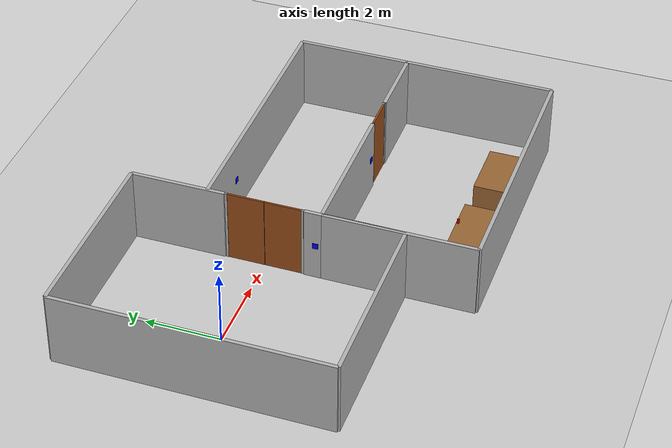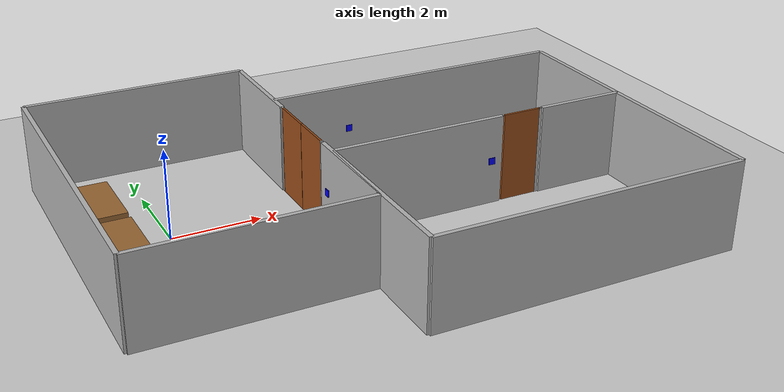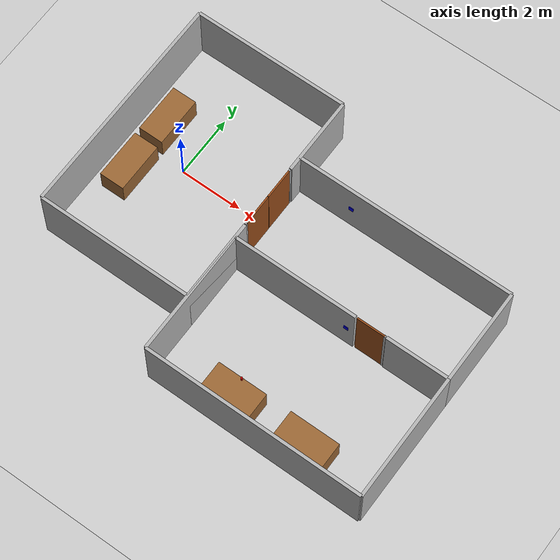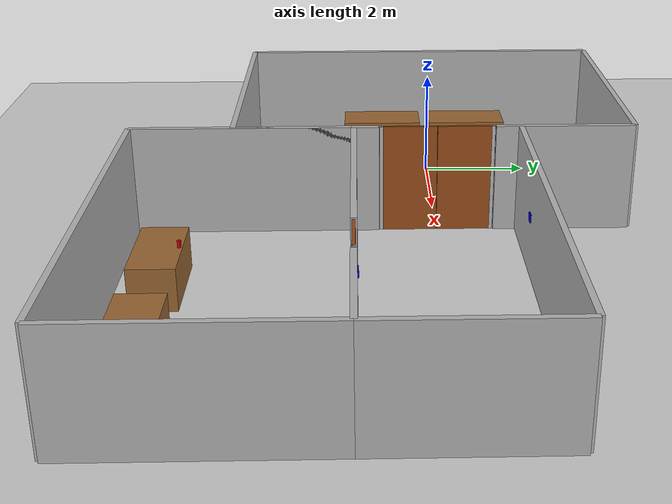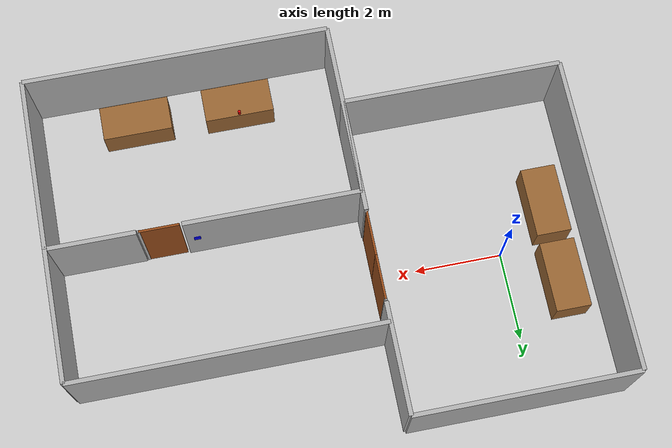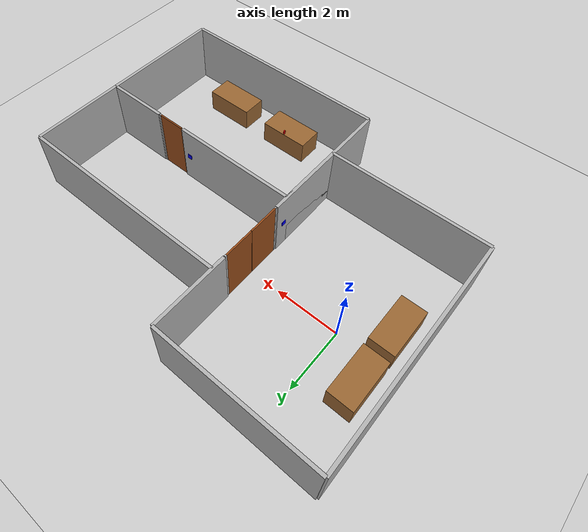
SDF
<?xml version="1.0" ?>
<sdf version="1.6">
  <world name="default">
    <plugin filename="ignition-gazebo-physics-system" name="ignition::gazebo::systems::Physics"/>
    <plugin filename="ignition-gazebo-user-commands-system" name="ignition::gazebo::systems::UserCommands"/>
    <plugin filename="ignition-gazebo-scene-broadcaster-system" name="ignition::gazebo::systems::SceneBroadcaster"/>
    <plugin filename="ignition-gazebo-sensors-system" name="ignition::gazebo::systems::Sensors"/>
    <plugin filename="ignition-gazebo-contact-system" name="ignition::gazebo::systems::Contact"/>

    <physics type="ode">
      <real_time_update_rate>1000.0</real_time_update_rate>
      <max_step_size>0.001</max_step_size>
      <ode><solver><type>quick</type><iters>100</iters></solver></ode>
    </physics>

    <light name="sun" type="directional">
      <pose>0 0 10 0 0 0</pose>
      <diffuse>0.8 0.8 0.8 1</diffuse>
      <direction>-0.5 0.1 -0.9</direction>
    </light>

    <model name="ground_plane">
      <static>true</static>
      <link name="link">
        <collision name="collision"><geometry><plane><normal>0 0 1</normal><size>20 20</size></plane></geometry></collision>
        <visual name="visual"><geometry><plane><normal>0 0 1</normal><size>20 20</size></plane></geometry>
          <material><ambient>0.8 0.8 0.8 1</ambient><diffuse>0.8 0.8 0.8 1</diffuse></material>
        </visual>
      </link>
    </model>

    <!-- Front barrier walls -->
    <model name="hallway_wall_left">
      <static>true</static>
      <pose>3.0 -2.35 1.0 0 0 0</pose>
      <link name="link">
        <collision name="col"><geometry><box><size>0.1 2.6 2.0</size></box></geometry></collision>
        <visual name="vis"><geometry><box><size>0.1 2.6 2.0</size></box></geometry>
          <material><ambient>0.5 0.5 0.5 1</ambient><diffuse>0.7 0.7 0.7 1</diffuse></material>
        </visual>
      </link>
    </model>

    <model name="hallway_wall_right">
      <static>true</static>
      <pose>3.0 2.3 1.0 0 0 0</pose>
      <link name="link">
        <collision name="col"><geometry><box><size>0.1 2.5 2.0</size></box></geometry></collision>
        <visual name="vis"><geometry><box><size>0.1 2.5 2.0</size></box></geometry>
          <material><ambient>0.5 0.5 0.5 1</ambient><diffuse>0.7 0.7 0.7 1</diffuse></material>
        </visual>
      </link>
    </model>

    <!-- room_wall_left: shortened from 6.0m to 5.0m, recentered at x=0.5
        now spans x=-2.0..3.0, matching back wall at x=-2.0 and door wall at x=3.0 -->
    <model name="room_wall_left">
      <static>true</static>
      <pose>0.5 -3.65 1.0 0 0 0</pose>
      <link name="link">
        <collision name="col"><geometry><box><size>5.0 0.1 2.0</size></box></geometry></collision>
        <visual name="vis"><geometry><box><size>5.0 0.1 2.0</size></box></geometry>
          <material><ambient>0.5 0.5 0.5 1</ambient><diffuse>0.7 0.7 0.7 1</diffuse></material>
        </visual>
      </link>
    </model>

    <!-- room_wall_right: shortened from 6.0m to 5.0m, recentered at x=0.5
        now spans x=-2.0..3.0, matching back wall at x=-2.0 and door wall at x=3.0 -->
    <model name="room_wall_right">
      <static>true</static>
      <pose>0.5 3.55 1.0 0 0 0</pose>
      <link name="link">
        <collision name="col"><geometry><box><size>5.0 0.1 2.0</size></box></geometry></collision>
        <visual name="vis"><geometry><box><size>5.0 0.1 2.0</size></box></geometry>
          <material><ambient>0.5 0.5 0.5 1</ambient><diffuse>0.7 0.7 0.7 1</diffuse></material>
        </visual>
      </link>
    </model>

    <!-- Back wall moved from x=-3.0 to x=-2.0 -->
    <model name="room_wall_back">
      <static>true</static>
      <pose>-2.0 -0.05 1.0 0 0 0</pose>
      <link name="link">
        <collision name="col"><geometry><box><size>0.1 7.2 2.0</size></box></geometry></collision>
        <visual name="vis"><geometry><box><size>0.1 7.2 2.0</size></box></geometry>
          <material><ambient>0.5 0.5 0.5 1</ambient><diffuse>0.7 0.7 0.7 1</diffuse></material>
        </visual>
      </link>
    </model>

    <!-- Hallway end wall x=10.0 -->
    <model name="hallway_end_wall">
      <static>true</static>
      <pose>10.0 0.0 1.0 0 0 0</pose>
      <link name="link">
        <collision name="col"><geometry><box><size>0.1 3.0 2.0</size></box></geometry></collision>
        <visual name="vis"><geometry><box><size>0.1 3.0 2.0</size></box></geometry>
          <material><ambient>0.5 0.5 0.5 1</ambient><diffuse>0.7 0.7 0.7 1</diffuse></material>
        </visual>
      </link>
    </model>

    <!-- North wall: x=3.0..10.0 → length=7.0 m, centered at x=6.5 -->
    <model name="hallway_ext_wall_right">
      <static>true</static>
      <pose>6.5 1.5 1.0 0 0 0</pose>
      <link name="link">
        <collision name="col"><geometry><box><size>7.0 0.1 2.0</size></box></geometry></collision>
        <visual name="vis"><geometry><box><size>7.0 0.1 2.0</size></box></geometry>
          <material><ambient>0.5 0.5 0.5 1</ambient><diffuse>0.7 0.7 0.7 1</diffuse></material>
        </visual>
      </link>
    </model>

    <!-- Side room back wall: now spans x=3.0..10.0 → length=7.0 m, centered at x=6.5 -->
    <model name="side_room_wall_back">
      <static>true</static>
      <pose>6.5 -5.5 1.0 0 0 0</pose>
      <link name="link">
        <collision name="col"><geometry><box><size>7.0 0.1 2.0</size></box></geometry></collision>
        <visual name="vis"><geometry><box><size>7.0 0.1 2.0</size></box></geometry>
          <material><ambient>0.5 0.5 0.5 1</ambient><diffuse>0.7 0.7 0.7 1</diffuse></material>
        </visual>
      </link>
    </model>

    <!-- Side room left wall: x=3.0, spans y=-1.5..-5.5 → length=4.0 m, centered at y=-3.5 -->
    <model name="side_room_wall_left">
      <static>true</static>
      <pose>3.0 -3.5 1.0 0 0 0</pose>
      <link name="link">
        <collision name="col"><geometry><box><size>0.1 4.0 2.0</size></box></geometry></collision>
        <visual name="vis"><geometry><box><size>0.1 4.0 2.0</size></box></geometry>
          <material><ambient>0.5 0.5 0.5 1</ambient><diffuse>0.7 0.7 0.7 1</diffuse></material>
        </visual>
      </link>
    </model>

    <!-- Side room right wall: x=10.0, spans y=-1.5..-5.5 → length=4.0 m, centered at y=-3.5 -->
    <model name="side_room_wall_right">
      <static>true</static>
      <pose>10.0 -3.5 1.0 0 0 0</pose>
      <link name="link">
        <collision name="col"><geometry><box><size>0.1 4.0 2.0</size></box></geometry></collision>
        <visual name="vis"><geometry><box><size>0.1 4.0 2.0</size></box></geometry>
          <material><ambient>0.5 0.5 0.5 1</ambient><diffuse>0.7 0.7 0.7 1</diffuse></material>
        </visual>
      </link>
    </model>

    <!-- South wall segment A: x=3.0..7.0 → length=4.0 m, centered at x=5.0 -->
    <model name="hallway_ext_wall_left_A">
      <static>true</static>
      <pose>5.0 -1.5 1.0 0 0 0</pose>
      <link name="link">
        <collision name="col"><geometry><box><size>4.0 0.1 2.0</size></box></geometry></collision>
        <visual name="vis"><geometry><box><size>4.0 0.1 2.0</size></box></geometry>
          <material><ambient>0.5 0.5 0.5 1</ambient><diffuse>0.7 0.7 0.7 1</diffuse></material>
        </visual>
      </link>
    </model>

    <!-- South wall segment B: x=8.0..10.0 → length=2.0 m, centered at x=9.0 -->
    <model name="hallway_ext_wall_left_B">
      <static>true</static>
      <pose>9.0 -1.5 1.0 0 0 0</pose>
      <link name="link">
        <collision name="col"><geometry><box><size>2.0 0.1 2.0</size></box></geometry></collision>
        <visual name="vis"><geometry><box><size>2.0 0.1 2.0</size></box></geometry>
          <material><ambient>0.5 0.5 0.5 1</ambient><diffuse>0.7 0.7 0.7 1</diffuse></material>
        </visual>
      </link>
    </model>

    <!-- Door hinge at x=7.95, leaf spans -X by 0.9 m to x=7.05 — clears wall A at x=7.0 -->
    <model name="side_room_door">
      <pose>7.95 -1.5 1.0 0 0 0</pose>
      <link name="door_frame">
        <visual name="v"><geometry><box><size>0.06 0.06 2.0</size></box></geometry></visual>
      </link>
      <link name="door_leaf">
        <inertial><mass>1.0</mass><inertia><ixx>0.1</ixx><iyy>0.1</iyy><izz>0.1</izz></inertia></inertial>
        <collision name="leaf_col"><pose>-0.45 0 0 0 0 0</pose><geometry><box><size>0.9 0.05 2.0</size></box></geometry></collision>
        <visual name="leaf_vis"><pose>-0.45 0 0 0 0 0</pose><geometry><box><size>0.9 0.05 2.0</size></box></geometry>
          <material><ambient>0.6 0.3 0.1 1</ambient><diffuse>0.6 0.3 0.1 1</diffuse></material>
        </visual>
      </link>
      <joint name="door_hinge" type="revolute">
        <parent>door_frame</parent>
        <child>door_leaf</child>
        <axis>
          <xyz>0 0 1</xyz>
          <limit>
            <lower>0</lower>
            <upper>1.57</upper>
            <velocity>0.6</velocity>
            <effort>20</effort>
          </limit>
          <dynamics><damping>5.0</damping><friction>0.1</friction></dynamics>
        </axis>
      </joint>
      <joint name="world_fix" type="fixed"><parent>world</parent><child>door_frame</child></joint>
      <plugin filename="ignition-gazebo-joint-state-publisher-system" name="ignition::gazebo::systems::JointStatePublisher"/>
      <plugin filename="ignition-gazebo-joint-position-controller-system" name="ignition::gazebo::systems::JointPositionController">
        <joint_name>door_hinge</joint_name>
        <topic>/model/side_room_door/door_cmd</topic>
        <p_gain>100</p_gain>
        <i_gain>1</i_gain>
        <d_gain>10</d_gain>
      </plugin>
    </model>

    <model name="ada_button_hallway">
      <pose>4.8 1.44 1.0 0 0 0</pose>
      <link name="button_base">
        <inertial><mass>100.0</mass><inertia><ixx>1</ixx><iyy>1</iyy><izz>1</izz></inertia></inertial>
      </link>
      <link name="button_face">
        <inertial><mass>0.1</mass><inertia><ixx>0.001</ixx><iyy>0.001</iyy><izz>0.001</izz></inertia></inertial>
        <visual name="v"><geometry><box><size>0.15 0.02 0.15</size></box></geometry>
          <material><ambient>0 0 1 1</ambient><diffuse>0 0 1 1</diffuse></material>
        </visual>
        <collision name="button_collision"><geometry><box><size>0.15 0.02 0.15</size></box></geometry>
          <surface><contact><ode><kp>500.0</kp><kd>50.0</kd></ode></contact></surface>
        </collision>
        <sensor name="button_contact_sensor" type="contact">
          <contact><collision>button_collision</collision></contact>
        </sensor>
      </link>
      <joint name="button_press" type="prismatic">
        <parent>button_base</parent><child>button_face</child>
        <axis>
          <xyz>0 -1 0</xyz>
          <limit><lower>-0.01</lower><upper>0.0</upper></limit>
          <dynamics><damping>10.0</damping><spring_stiffness>500.0</spring_stiffness><spring_reference>0.0</spring_reference></dynamics>
        </axis>
      </joint>
      <joint name="world_fix" type="fixed"><parent>world</parent><child>button_base</child></joint>
      <plugin filename="ignition-gazebo-touchplugin-system" name="ignition::gazebo::systems::TouchPlugin">
        <target>hsrb</target><namespace>button_hallway_logic</namespace><time>0.01</time><enabled>true</enabled>
      </plugin>
    </model>

    <model name="ada_button_side_interior">
      <pose>6.75 -1.56 1.0 0 0 0</pose>
      <link name="button_base">
        <inertial><mass>100.0</mass><inertia><ixx>1</ixx><iyy>1</iyy><izz>1</izz></inertia></inertial>
      </link>
      <link name="button_face">
        <inertial><mass>0.1</mass><inertia><ixx>0.001</ixx><iyy>0.001</iyy><izz>0.001</izz></inertia></inertial>
        <visual name="v"><geometry><box><size>0.15 0.02 0.15</size></box></geometry>
          <material><ambient>0 0 1 1</ambient><diffuse>0 0 1 1</diffuse></material>
        </visual>
        <collision name="button_collision"><geometry><box><size>0.15 0.02 0.15</size></box></geometry>
          <surface><contact><ode><kp>500.0</kp><kd>50.0</kd></ode></contact></surface>
        </collision>
        <sensor name="button_contact_sensor" type="contact">
          <contact><collision>button_collision</collision></contact>
        </sensor>
      </link>
      <joint name="button_press" type="prismatic">
        <parent>button_base</parent><child>button_face</child>
        <axis>
          <xyz>0 1 0</xyz>
          <limit><lower>-0.01</lower><upper>0.0</upper></limit>
          <dynamics><damping>10.0</damping><spring_stiffness>500.0</spring_stiffness><spring_reference>0.0</spring_reference></dynamics>
        </axis>
      </joint>
      <joint name="world_fix" type="fixed"><parent>world</parent><child>button_base</child></joint>
      <plugin filename="ignition-gazebo-touchplugin-system" name="ignition::gazebo::systems::TouchPlugin">
        <target>hsrb</target><namespace>button_side_interior_logic</namespace><time>0.01</time><enabled>true</enabled>
      </plugin>
    </model>

    <!-- ============================================================
        MAIN ROOM DOUBLE DOORS
        AND BUTTONS
        ============================================================ -->
    <!-- Right door leaf: hinge at Y=-1.005, leaf spans toward Y=0.0, opens in -rotation (outward) -->
    <model name="handicap_door_right">
      <pose>3.0 -1.005 1.0 0 0 1.5708</pose>

      <link name="door_frame">
        <visual name="v"><geometry><box><size>0.06 0.06 2.0</size></box></geometry></visual>
      </link>

      <link name="door_leaf">
        <inertial><mass>1.0</mass><inertia><ixx>0.1</ixx><iyy>0.1</iyy><izz>0.1</izz></inertia></inertial>
        <collision name="leaf_col"><pose>0.5 0 0 0 0 0</pose><geometry><box><size>1.0 0.05 2.0</size></box></geometry></collision>
        <visual name="leaf_vis"><pose>0.5 0 0 0 0 0</pose><geometry><box><size>1.0 0.05 2.0</size></box></geometry>
          <material><ambient>0.6 0.3 0.1 1</ambient><diffuse>0.6 0.3 0.1 1</diffuse></material>
        </visual>
      </link>

      <joint name="door_hinge" type="revolute">
        <parent>door_frame</parent>
        <child>door_leaf</child>
        <axis>
          <xyz>0 0 1</xyz>
          <limit>
            <lower>-1.57</lower>
            <upper>0</upper>
            <velocity>0.6</velocity>
            <effort>20</effort>
          </limit>
          <dynamics><damping>5.0</damping><friction>0.1</friction></dynamics>
        </axis>
      </joint>

      <joint name="world_fix" type="fixed"><parent>world</parent><child>door_frame</child></joint>

      <plugin filename="ignition-gazebo-joint-state-publisher-system" name="ignition::gazebo::systems::JointStatePublisher"/>
      <plugin filename="ignition-gazebo-joint-position-controller-system" name="ignition::gazebo::systems::JointPositionController">
        <joint_name>door_hinge</joint_name>
        <topic>/model/handicap_door_right/door_cmd</topic>
        <p_gain>100</p_gain>
        <i_gain>1</i_gain>
        <d_gain>10</d_gain>
      </plugin>
    </model>

    <!-- left door leaf: hinge at Y=1.005, leaf spans toward Y=0.0, opens in +rotation (outward) -->
    <model name="handicap_left_left">
      <pose>3.0 1.005 1.0 0 0 1.5708</pose>

      <link name="door_frame">
        <visual name="v"><geometry><box><size>0.06 0.06 2.0</size></box></geometry></visual>
      </link>

      <link name="door_leaf">
        <inertial><mass>1.0</mass><inertia><ixx>0.1</ixx><iyy>0.1</iyy><izz>0.1</izz></inertia></inertial>
        <collision name="leaf_col"><pose>-0.5 0 0 0 0 0</pose><geometry><box><size>1.0 0.05 2.0</size></box></geometry></collision>
        <visual name="leaf_vis"><pose>-0.5 0 0 0 0 0</pose><geometry><box><size>1.0 0.05 2.0</size></box></geometry>
          <material><ambient>0.6 0.3 0.1 1</ambient><diffuse>0.6 0.3 0.1 1</diffuse></material>
        </visual>
      </link>

      <joint name="door_hinge" type="revolute">
        <parent>door_frame</parent>
        <child>door_leaf</child>
        <axis>
          <xyz>0 0 1</xyz>
          <limit>
            <lower>0.0</lower>
            <upper>1.57</upper>
            <velocity>0.6</velocity>
            <effort>20</effort>
          </limit>
          <dynamics><damping>5.0</damping><friction>0.1</friction></dynamics>
        </axis>
      </joint>

      <joint name="world_fix" type="fixed"><parent>world</parent><child>door_frame</child></joint>

      <plugin filename="ignition-gazebo-joint-state-publisher-system" name="ignition::gazebo::systems::JointStatePublisher"/>
      <plugin filename="ignition-gazebo-joint-position-controller-system" name="ignition::gazebo::systems::JointPositionController">
        <joint_name>door_hinge</joint_name>
        <topic>/model/handicap_door_left/door_cmd</topic>
        <p_gain>100</p_gain>
        <i_gain>1</i_gain>
        <d_gain>10</d_gain>
      </plugin>
    </model>

    <model name="ada_button">
      <static>true</static>
      <pose>2.94 -1.35 1.0 0 0 0</pose>

      <link name="button_link">
        <visual name="v">
          <geometry><box><size>0.02 0.15 0.15</size></box></geometry>
          <material><ambient>0 0 1 1</ambient><diffuse>0 0 1 1</diffuse></material>
        </visual>

        <collision name="button_collision">
          <pose>0.03 0 0 0 0 0</pose>
          <geometry><box><size>0.08 0.20 0.20</size></box></geometry>

          <surface>
            <contact>
              <collide_without_contact>true</collide_without_contact>
            </contact>
          </surface>

          <category_bitmask>0x02</category_bitmask>
        </collision>

        <sensor name="button_contact_sensor" type="contact">
          <contact>
            <collision>button_collision</collision>
          </contact>
          <update_rate>100</update_rate>
        </sensor>
      </link>

      <plugin filename="ignition-gazebo-touchplugin-system"
              name="ignition::gazebo::systems::TouchPlugin">
        <target>hsrb</target>
        <namespace>button_logic</namespace>
        <time>0.001</time>
        <enabled>true</enabled>
      </plugin>
    </model>
    <model name="ada_button_side">
      <pose>6.75 -1.44 1.0 0 0 0</pose>
      <link name="button_base">
        <inertial><mass>100.0</mass><inertia><ixx>1</ixx><iyy>1</iyy><izz>1</izz></inertia></inertial>
      </link>
      <link name="button_face">
        <inertial><mass>0.1</mass><inertia><ixx>0.001</ixx><iyy>0.001</iyy><izz>0.001</izz></inertia></inertial>
        <visual name="v"><geometry><box><size>0.15 0.02 0.15</size></box></geometry>
          <material><ambient>0 0 1 1</ambient><diffuse>0 0 1 1</diffuse></material>
        </visual>
        <collision name="button_collision"><geometry><box><size>0.15 0.02 0.15</size></box></geometry>
          <surface><contact><ode><kp>500.0</kp><kd>50.0</kd></ode></contact></surface>
        </collision>
        <sensor name="button_contact_sensor" type="contact">
          <contact><collision>button_collision</collision></contact>
        </sensor>
      </link>
      <joint name="button_press" type="prismatic">
        <parent>button_base</parent><child>button_face</child>
        <axis>
          <xyz>0 -1 0</xyz>
          <limit><lower>-0.01</lower><upper>0.0</upper></limit>
          <dynamics><damping>10.0</damping><spring_stiffness>500.0</spring_stiffness><spring_reference>0.0</spring_reference></dynamics>
        </axis>
      </joint>
      <joint name="world_fix" type="fixed"><parent>world</parent><child>button_base</child></joint>
      <plugin filename="ignition-gazebo-touchplugin-system" name="ignition::gazebo::systems::TouchPlugin">
        <target>hsrb</target><namespace>button_side_logic</namespace><time>0.01</time><enabled>true</enabled>
      </plugin>
    </model>

    <!-- Table 1 moved from x=-2.2 to x=-1.2 -->
    <model name="main_room_table_1">
      <static>true</static>
      <pose>-1.2 -0.9 0.375 0 0 0</pose>
      <link name="link">
        <collision name="col"><geometry><box><size>0.8 1.6 0.75</size></box></geometry></collision>
        <visual name="vis"><geometry><box><size>0.8 1.6 0.75</size></box></geometry>
          <material><ambient>0.5 0.35 0.2 1</ambient><diffuse>0.6 0.4 0.2 1</diffuse></material>
        </visual>
      </link>
    </model>

    <!-- Table 2 moved from x=-2.2 to x=-1.2 -->
    <model name="main_room_table_2">
      <static>true</static>
      <pose>-1.2 0.9 0.375 0 0 0</pose>
      <link name="link">
        <collision name="col"><geometry><box><size>0.8 1.6 0.75</size></box></geometry></collision>
        <visual name="vis"><geometry><box><size>0.8 1.6 0.75</size></box></geometry>
          <material><ambient>0.5 0.35 0.2 1</ambient><diffuse>0.6 0.4 0.2 1</diffuse></material>
        </visual>
      </link>
    </model>

    <!-- Side room table 1: moved from x=5.7 to x=5.3 for more spacing -->
    <model name="side_room_table_1">
      <static>true</static>
      <pose>5.3 -4.7 0.375 0 0 0</pose>
      <link name="link">
        <collision name="col"><geometry><box><size>1.6 0.8 0.75</size></box></geometry></collision>
        <visual name="vis"><geometry><box><size>1.6 0.8 0.75</size></box></geometry>
          <material><ambient>0.5 0.35 0.2 1</ambient><diffuse>0.6 0.4 0.2 1</diffuse></material>
        </visual>
      </link>
    </model>

    <!-- Side room table 2: moved from x=7.3 to x=7.7 for more spacing -->
    <model name="side_room_table_2">
      <static>true</static>
      <pose>7.7 -4.7 0.375 0 0 0</pose>
      <link name="link">
        <collision name="col"><geometry><box><size>1.6 0.8 0.75</size></box></geometry></collision>
        <visual name="vis"><geometry><box><size>1.6 0.8 0.75</size></box></geometry>
          <material><ambient>0.5 0.35 0.2 1</ambient><diffuse>0.6 0.4 0.2 1</diffuse></material>
        </visual>
      </link>
    </model>

    <!-- Coke can sitting on side_room_table_1
        Table top surface is at z = 0.375 + 0.375 = 0.75m
        Can: radius=0.033m, length=0.122m, so center at z=0.75+0.061=0.811 -->
    <model name="coke_can">
      <static>false</static>
      <pose>5.3 -4.35 0.811 0 0 0</pose>
      <link name="link">
        <inertial>
          <mass>0.001</mass>
          <inertia><ixx>0.0001</ixx><iyy>0.0001</iyy><izz>0.0001</izz></inertia>
        </inertial>

        <gravity>0</gravity>

        <collision name="col">
          <geometry><cylinder><radius>0.033</radius><length>0.122</length></cylinder></geometry>
          <surface>
            <friction>
              <ode>
                <mu>1000.0</mu> <mu2>1000.0</mu2>
              </ode>
            </friction>
            <contact>
              <ode>
                <kp>1e12</kp> <kd>1.0</kd>
                <min_depth>0.01</min_depth>
              </ode>
            </contact>
          </surface>
        </collision>

        <visual name="vis">
          <geometry><cylinder><radius>0.033</radius><length>0.122</length></cylinder></geometry>
          <material><ambient>0.8 0 0 1</ambient><diffuse>0.8 0 0 1</diffuse></material>
        </visual>
      </link>
      </model>

  </world>
</sdf>
